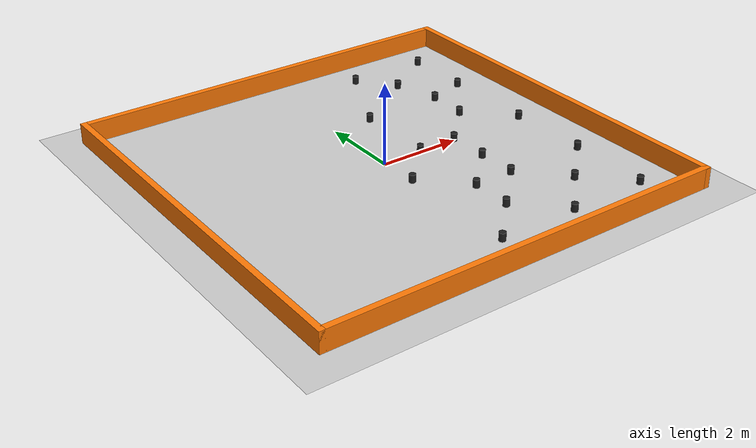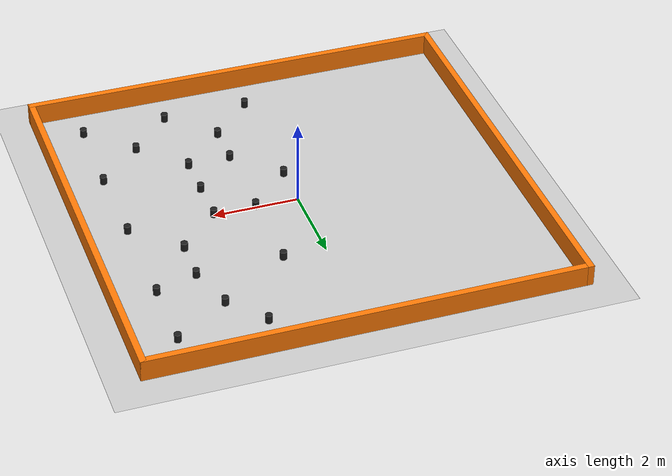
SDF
<sdf version="1.7">
 <world name="default">
  <model name="ground_plane">
   <static>1</static>
   <link name="link">
    <collision name="collision">
     <geometry><plane><normal>0 0 1</normal><size>100 100</size></plane></geometry>
     <surface>
      <contact><collide_bitmask>65535</collide_bitmask></contact>
      <friction><ode><mu>100</mu><mu2>50</mu2></ode></friction>
     </surface>
    </collision>
    <visual name="visual">
     <cast_shadows>0</cast_shadows>
     <geometry><plane><normal>0 0 1</normal><size>100 100</size></plane></geometry>
     <material>
      <script><uri>file://media/materials/scripts/gazebo.material</uri><name>Gazebo/Grey</name></script>
     </material>
    </visual>
   </link>
  </model>
  <model name="walls">
   <pose>-0.00064 -0.002056 0 0 -0 0</pose>
   <link name="Wall_10">
    <collision name="Wall_10_Collision">
     <geometry><box><size>10 0.15 0.5</size></box></geometry>
     <pose>0 0 0.25 0 -0 0</pose>
    </collision>
    <visual name="Wall_10_Visual">
     <pose>0 0 0.25 0 -0 0</pose>
     <geometry><box><size>10 0.15 0.5</size></box></geometry>
     <material>
      <script><uri>file://media/materials/scripts/gazebo.material</uri><name>Gazebo/Grey</name></script>
      <ambient>0.996078 0.47451 0.0196078 1</ambient>
     </material>
     <meta><layer>0</layer></meta>
    </visual>
    <pose>-5 0 0 0 -0 -1.5708</pose>
   </link>
   <link name="Wall_12">
    <collision name="Wall_12_Collision">
     <geometry><box><size>10.15 0.15 0.5</size></box></geometry>
     <pose>0 0 0.25 0 -0 0</pose>
    </collision>
    <visual name="Wall_12_Visual">
     <pose>0 0 0.25 0 -0 0</pose>
     <geometry><box><size>10.15 0.15 0.5</size></box></geometry>
     <material>
      <script><uri>file://media/materials/scripts/gazebo.material</uri><name>Gazebo/Grey</name></script>
      <ambient>0.996078 0.47451 0.0196078 1</ambient>
     </material>
     <meta><layer>0</layer></meta>
    </visual>
    <pose>0 -4.925 0 0 -0 0</pose>
   </link>
   <link name="Wall_14">
    <collision name="Wall_14_Collision">
     <geometry><box><size>10 0.15 0.5</size></box></geometry>
     <pose>0 0 0.25 0 -0 0</pose>
    </collision>
    <visual name="Wall_14_Visual">
     <pose>0 0 0.25 0 -0 0</pose>
     <geometry><box><size>10 0.15 0.5</size></box></geometry>
     <material>
      <script><uri>file://media/materials/scripts/gazebo.material</uri><name>Gazebo/Grey</name></script>
      <ambient>0.996078 0.47451 0.0196078 1</ambient>
     </material>
     <meta><layer>0</layer></meta>
    </visual>
    <pose>5 0 0 0 -0 -1.5708</pose>
   </link>
   <link name="Wall_7">
    <collision name="Wall_7_Collision">
     <geometry><box><size>10 0.15 0.5</size></box></geometry>
     <pose>0 0 0.25 0 -0 0</pose>
    </collision>
    <visual name="Wall_7_Visual">
     <pose>0 0 0.25 0 -0 0</pose>
     <geometry><box><size>10 0.15 0.5</size></box></geometry>
     <material>
      <script><uri>file://media/materials/scripts/gazebo.material</uri><name>Gazebo/Grey</name></script>
      <ambient>0.996078 0.47451 0.0196078 1</ambient>
     </material>
     <meta><layer>0</layer></meta>
    </visual>
    <pose>0.075 4.925 0 0 -0 0</pose>
   </link>
   <static>1</static>
  </model>
  <model name="cylinder">
   <link name="link">
    <inertial>
     <mass>1</mass>
     <inertia><ixx>0.145833</ixx><ixy>0</ixy><ixz>0</ixz><iyy>0.145833</iyy><iyz>0</iyz><izz>0.125</izz></inertia>
    </inertial>
    <visual name="visual">
     <geometry><cylinder><radius>0.08</radius><length>0.2</length></cylinder></geometry>
     <material>
      <script><name>Gazebo/Black</name><uri>file://media/materials/scripts/gazebo.material</uri></script>
      <shader type="vertex"><normal_map>__default__</normal_map></shader>
      <ambient>1 0 0 1</ambient>
      <diffuse>0.7 0.7 0.7 1</diffuse>
      <specular>0.01 0.01 0.01 1</specular>
      <emissive>0 0 0 1</emissive>
     </material>
    </visual>
    <collision name="collision">
     <geometry><cylinder><radius>0.08</radius><length>0.2</length></cylinder></geometry>
     <surface>
      <friction>
       <ode><mu>1</mu><mu2>1</mu2><fdir1>0 0 0</fdir1><slip1>0</slip1><slip2>0</slip2></ode>
       <torsional>
        <coefficient>1</coefficient>
        <patch_radius>0</patch_radius>
        <surface_radius>0</surface_radius>
        <use_patch_radius>1</use_patch_radius>
        <ode><slip>0</slip></ode>
       </torsional>
      </friction>
      <bounce><restitution_coefficient>0</restitution_coefficient><threshold>1e+06</threshold></bounce>
      <contact>
       <collide_without_contact>0</collide_without_contact>
       <collide_without_contact_bitmask>1</collide_without_contact_bitmask>
       <collide_bitmask>1</collide_bitmask>
       <ode>
        <soft_cfm>0</soft_cfm>
        <soft_erp>0.2</soft_erp>
        <kp>1e+13</kp>
        <kd>1</kd>
        <max_vel>0.01</max_vel>
        <min_depth>0</min_depth>
       </ode>
       <bullet>
        <split_impulse>1</split_impulse>
        <split_impulse_penetration_threshold>-0.01</split_impulse_penetration_threshold>
        <soft_cfm>0</soft_cfm>
        <soft_erp>0.2</soft_erp>
        <kp>1e+13</kp>
        <kd>1</kd>
       </bullet>
      </contact>
     </surface>
    </collision>
   </link>
   <static>1</static>
   <pose>1.00259 0.001229 0.1 0 -0 0</pose>
  </model>
  <model name="cylinder_clone">
   <link name="link">
    <inertial>
     <mass>1</mass>
     <inertia><ixx>0.145833</ixx><ixy>0</ixy><ixz>0</ixz><iyy>0.145833</iyy><iyz>0</iyz><izz>0.125</izz></inertia>
    </inertial>
    <visual name="visual">
     <geometry><cylinder><radius>0.08</radius><length>0.2</length></cylinder></geometry>
     <material>
      <script><name>Gazebo/Black</name><uri>file://media/materials/scripts/gazebo.material</uri></script>
      <shader type="vertex"><normal_map>__default__</normal_map></shader>
      <ambient>1 0 0 1</ambient>
      <diffuse>0.7 0.7 0.7 1</diffuse>
      <specular>0.01 0.01 0.01 1</specular>
      <emissive>0 0 0 1</emissive>
     </material>
    </visual>
    <collision name="collision">
     <geometry><cylinder><radius>0.08</radius><length>0.2</length></cylinder></geometry>
     <surface>
      <friction>
       <ode><mu>1</mu><mu2>1</mu2><fdir1>0 0 0</fdir1><slip1>0</slip1><slip2>0</slip2></ode>
       <torsional>
        <coefficient>1</coefficient>
        <patch_radius>0</patch_radius>
        <surface_radius>0</surface_radius>
        <use_patch_radius>1</use_patch_radius>
        <ode><slip>0</slip></ode>
       </torsional>
      </friction>
      <bounce><restitution_coefficient>0</restitution_coefficient><threshold>1e+06</threshold></bounce>
      <contact>
       <collide_without_contact>0</collide_without_contact>
       <collide_without_contact_bitmask>1</collide_without_contact_bitmask>
       <collide_bitmask>1</collide_bitmask>
       <ode>
        <soft_cfm>0</soft_cfm>
        <soft_erp>0.2</soft_erp>
        <kp>1e+13</kp>
        <kd>1</kd>
        <max_vel>0.01</max_vel>
        <min_depth>0</min_depth>
       </ode>
       <bullet>
        <split_impulse>1</split_impulse>
        <split_impulse_penetration_threshold>-0.01</split_impulse_penetration_threshold>
        <soft_cfm>0</soft_cfm>
        <soft_erp>0.2</soft_erp>
        <kp>1e+13</kp>
        <kd>1</kd>
       </bullet>
      </contact>
     </surface>
    </collision>
   </link>
   <static>1</static>
   <pose>1.99384 0.00385 0.1 0 -0 0</pose>
  </model>
  <model name="cylinder_clone_clone">
   <link name="link">
    <inertial>
     <mass>1</mass>
     <inertia><ixx>0.145833</ixx><ixy>0</ixy><ixz>0</ixz><iyy>0.145833</iyy><iyz>0</iyz><izz>0.125</izz></inertia>
    </inertial>
    <visual name="visual">
     <geometry><cylinder><radius>0.08</radius><length>0.2</length></cylinder></geometry>
     <material>
      <script><name>Gazebo/Black</name><uri>file://media/materials/scripts/gazebo.material</uri></script>
      <shader type="vertex"><normal_map>__default__</normal_map></shader>
      <ambient>1 0 0 1</ambient>
      <diffuse>0.7 0.7 0.7 1</diffuse>
      <specular>0.01 0.01 0.01 1</specular>
      <emissive>0 0 0 1</emissive>
     </material>
    </visual>
    <collision name="collision">
     <geometry><cylinder><radius>0.08</radius><length>0.2</length></cylinder></geometry>
     <surface>
      <friction>
       <ode><mu>1</mu><mu2>1</mu2><fdir1>0 0 0</fdir1><slip1>0</slip1><slip2>0</slip2></ode>
       <torsional>
        <coefficient>1</coefficient>
        <patch_radius>0</patch_radius>
        <surface_radius>0</surface_radius>
        <use_patch_radius>1</use_patch_radius>
        <ode><slip>0</slip></ode>
       </torsional>
      </friction>
      <bounce><restitution_coefficient>0</restitution_coefficient><threshold>1e+06</threshold></bounce>
      <contact>
       <collide_without_contact>0</collide_without_contact>
       <collide_without_contact_bitmask>1</collide_without_contact_bitmask>
       <collide_bitmask>1</collide_bitmask>
       <ode>
        <soft_cfm>0</soft_cfm>
        <soft_erp>0.2</soft_erp>
        <kp>1e+13</kp>
        <kd>1</kd>
        <max_vel>0.01</max_vel>
        <min_depth>0</min_depth>
       </ode>
       <bullet>
        <split_impulse>1</split_impulse>
        <split_impulse_penetration_threshold>-0.01</split_impulse_penetration_threshold>
        <soft_cfm>0</soft_cfm>
        <soft_erp>0.2</soft_erp>
        <kp>1e+13</kp>
        <kd>1</kd>
       </bullet>
      </contact>
     </surface>
    </collision>
   </link>
   <static>1</static>
   <pose>1.99822 -1.01574 0.1 0 -0 0</pose>
  </model>
  <model name="cylinder_clone_clone_clone">
   <link name="link">
    <inertial>
     <mass>1</mass>
     <inertia><ixx>0.145833</ixx><ixy>0</ixy><ixz>0</ixz><iyy>0.145833</iyy><iyz>0</iyz><izz>0.125</izz></inertia>
    </inertial>
    <visual name="visual">
     <geometry><cylinder><radius>0.08</radius><length>0.2</length></cylinder></geometry>
     <material>
      <script><name>Gazebo/Black</name><uri>file://media/materials/scripts/gazebo.material</uri></script>
      <shader type="vertex"><normal_map>__default__</normal_map></shader>
      <ambient>1 0 0 1</ambient>
      <diffuse>0.7 0.7 0.7 1</diffuse>
      <specular>0.01 0.01 0.01 1</specular>
      <emissive>0 0 0 1</emissive>
     </material>
    </visual>
    <collision name="collision">
     <geometry><cylinder><radius>0.08</radius><length>0.2</length></cylinder></geometry>
     <surface>
      <friction>
       <ode><mu>1</mu><mu2>1</mu2><fdir1>0 0 0</fdir1><slip1>0</slip1><slip2>0</slip2></ode>
       <torsional>
        <coefficient>1</coefficient>
        <patch_radius>0</patch_radius>
        <surface_radius>0</surface_radius>
        <use_patch_radius>1</use_patch_radius>
        <ode><slip>0</slip></ode>
       </torsional>
      </friction>
      <bounce><restitution_coefficient>0</restitution_coefficient><threshold>1e+06</threshold></bounce>
      <contact>
       <collide_without_contact>0</collide_without_contact>
       <collide_without_contact_bitmask>1</collide_without_contact_bitmask>
       <collide_bitmask>1</collide_bitmask>
       <ode>
        <soft_cfm>0</soft_cfm>
        <soft_erp>0.2</soft_erp>
        <kp>1e+13</kp>
        <kd>1</kd>
        <max_vel>0.01</max_vel>
        <min_depth>0</min_depth>
       </ode>
       <bullet>
        <split_impulse>1</split_impulse>
        <split_impulse_penetration_threshold>-0.01</split_impulse_penetration_threshold>
        <soft_cfm>0</soft_cfm>
        <soft_erp>0.2</soft_erp>
        <kp>1e+13</kp>
        <kd>1</kd>
       </bullet>
      </contact>
     </surface>
    </collision>
   </link>
   <static>1</static>
   <pose>1.99822 -1.99574 0.1 0 -0 0</pose>
  </model>
  <model name="cylinder_clone_clone_clone_clone">
   <link name="link">
    <inertial>
     <mass>1</mass>
     <inertia><ixx>0.145833</ixx><ixy>0</ixy><ixz>0</ixz><iyy>0.145833</iyy><iyz>0</iyz><izz>0.125</izz></inertia>
    </inertial>
    <visual name="visual">
     <geometry><cylinder><radius>0.08</radius><length>0.2</length></cylinder></geometry>
     <material>
      <script><name>Gazebo/Black</name><uri>file://media/materials/scripts/gazebo.material</uri></script>
      <shader type="vertex"><normal_map>__default__</normal_map></shader>
      <ambient>1 0 0 1</ambient>
      <diffuse>0.7 0.7 0.7 1</diffuse>
      <specular>0.01 0.01 0.01 1</specular>
      <emissive>0 0 0 1</emissive>
     </material>
    </visual>
    <collision name="collision">
     <geometry><cylinder><radius>0.08</radius><length>0.2</length></cylinder></geometry>
     <surface>
      <friction>
       <ode><mu>1</mu><mu2>1</mu2><fdir1>0 0 0</fdir1><slip1>0</slip1><slip2>0</slip2></ode>
       <torsional>
        <coefficient>1</coefficient>
        <patch_radius>0</patch_radius>
        <surface_radius>0</surface_radius>
        <use_patch_radius>1</use_patch_radius>
        <ode><slip>0</slip></ode>
       </torsional>
      </friction>
      <bounce><restitution_coefficient>0</restitution_coefficient><threshold>1e+06</threshold></bounce>
      <contact>
       <collide_without_contact>0</collide_without_contact>
       <collide_without_contact_bitmask>1</collide_without_contact_bitmask>
       <collide_bitmask>1</collide_bitmask>
       <ode>
        <soft_cfm>0</soft_cfm>
        <soft_erp>0.2</soft_erp>
        <kp>1e+13</kp>
        <kd>1</kd>
        <max_vel>0.01</max_vel>
        <min_depth>0</min_depth>
       </ode>
       <bullet>
        <split_impulse>1</split_impulse>
        <split_impulse_penetration_threshold>-0.01</split_impulse_penetration_threshold>
        <soft_cfm>0</soft_cfm>
        <soft_erp>0.2</soft_erp>
        <kp>1e+13</kp>
        <kd>1</kd>
       </bullet>
      </contact>
     </surface>
    </collision>
   </link>
   <static>1</static>
   <pose>0.998219 -2.00574 0.1 0 -0 0</pose>
  </model>
  <model name="cylinder_clone_clone_clone_clone_clone">
   <link name="link">
    <inertial>
     <mass>1</mass>
     <inertia><ixx>0.145833</ixx><ixy>0</ixy><ixz>0</ixz><iyy>0.145833</iyy><iyz>0</iyz><izz>0.125</izz></inertia>
    </inertial>
    <visual name="visual">
     <geometry><cylinder><radius>0.08</radius><length>0.2</length></cylinder></geometry>
     <material>
      <script><name>Gazebo/Black</name><uri>file://media/materials/scripts/gazebo.material</uri></script>
      <shader type="vertex"><normal_map>__default__</normal_map></shader>
      <ambient>1 0 0 1</ambient>
      <diffuse>0.7 0.7 0.7 1</diffuse>
      <specular>0.01 0.01 0.01 1</specular>
      <emissive>0 0 0 1</emissive>
     </material>
    </visual>
    <collision name="collision">
     <geometry><cylinder><radius>0.08</radius><length>0.2</length></cylinder></geometry>
     <surface>
      <friction>
       <ode><mu>1</mu><mu2>1</mu2><fdir1>0 0 0</fdir1><slip1>0</slip1><slip2>0</slip2></ode>
       <torsional>
        <coefficient>1</coefficient>
        <patch_radius>0</patch_radius>
        <surface_radius>0</surface_radius>
        <use_patch_radius>1</use_patch_radius>
        <ode><slip>0</slip></ode>
       </torsional>
      </friction>
      <bounce><restitution_coefficient>0</restitution_coefficient><threshold>1e+06</threshold></bounce>
      <contact>
       <collide_without_contact>0</collide_without_contact>
       <collide_without_contact_bitmask>1</collide_without_contact_bitmask>
       <collide_bitmask>1</collide_bitmask>
       <ode>
        <soft_cfm>0</soft_cfm>
        <soft_erp>0.2</soft_erp>
        <kp>1e+13</kp>
        <kd>1</kd>
        <max_vel>0.01</max_vel>
        <min_depth>0</min_depth>
       </ode>
       <bullet>
        <split_impulse>1</split_impulse>
        <split_impulse_penetration_threshold>-0.01</split_impulse_penetration_threshold>
        <soft_cfm>0</soft_cfm>
        <soft_erp>0.2</soft_erp>
        <kp>1e+13</kp>
        <kd>1</kd>
       </bullet>
      </contact>
     </surface>
    </collision>
   </link>
   <static>1</static>
   <pose>0.008219 -1.00574 0.1 0 -0 0</pose>
  </model>
  <model name="cylinder_clone_clone_clone_clone_clone_clone_clone">
   <link name="link">
    <inertial>
     <mass>1</mass>
     <inertia><ixx>0.145833</ixx><ixy>0</ixy><ixz>0</ixz><iyy>0.145833</iyy><iyz>0</iyz><izz>0.125</izz></inertia>
    </inertial>
    <visual name="visual">
     <geometry><cylinder><radius>0.08</radius><length>0.2</length></cylinder></geometry>
     <material>
      <script><name>Gazebo/Black</name><uri>file://media/materials/scripts/gazebo.material</uri></script>
      <shader type="vertex"><normal_map>__default__</normal_map></shader>
      <ambient>1 0 0 1</ambient>
      <diffuse>0.7 0.7 0.7 1</diffuse>
      <specular>0.01 0.01 0.01 1</specular>
      <emissive>0 0 0 1</emissive>
     </material>
    </visual>
    <collision name="collision">
     <geometry><cylinder><radius>0.08</radius><length>0.2</length></cylinder></geometry>
     <surface>
      <friction>
       <ode><mu>1</mu><mu2>1</mu2><fdir1>0 0 0</fdir1><slip1>0</slip1><slip2>0</slip2></ode>
       <torsional>
        <coefficient>1</coefficient>
        <patch_radius>0</patch_radius>
        <surface_radius>0</surface_radius>
        <use_patch_radius>1</use_patch_radius>
        <ode><slip>0</slip></ode>
       </torsional>
      </friction>
      <bounce><restitution_coefficient>0</restitution_coefficient><threshold>1e+06</threshold></bounce>
      <contact>
       <collide_without_contact>0</collide_without_contact>
       <collide_without_contact_bitmask>1</collide_without_contact_bitmask>
       <collide_bitmask>1</collide_bitmask>
       <ode>
        <soft_cfm>0</soft_cfm>
        <soft_erp>0.2</soft_erp>
        <kp>1e+13</kp>
        <kd>1</kd>
        <max_vel>0.01</max_vel>
        <min_depth>0</min_depth>
       </ode>
       <bullet>
        <split_impulse>1</split_impulse>
        <split_impulse_penetration_threshold>-0.01</split_impulse_penetration_threshold>
        <soft_cfm>0</soft_cfm>
        <soft_erp>0.2</soft_erp>
        <kp>1e+13</kp>
        <kd>1</kd>
       </bullet>
      </contact>
     </surface>
    </collision>
   </link>
   <static>1</static>
   <pose>2.99822 2.00426 0.1 0 -0 0</pose>
  </model>
  <model name="cylinder_clone_clone_clone_clone_clone_clone_clone_clone">
   <link name="link">
    <inertial>
     <mass>1</mass>
     <inertia><ixx>0.145833</ixx><ixy>0</ixy><ixz>0</ixz><iyy>0.145833</iyy><iyz>0</iyz><izz>0.125</izz></inertia>
    </inertial>
    <visual name="visual">
     <geometry><cylinder><radius>0.08</radius><length>0.2</length></cylinder></geometry>
     <material>
      <script><name>Gazebo/Black</name><uri>file://media/materials/scripts/gazebo.material</uri></script>
      <shader type="vertex"><normal_map>__default__</normal_map></shader>
      <ambient>1 0 0 1</ambient>
      <diffuse>0.7 0.7 0.7 1</diffuse>
      <specular>0.01 0.01 0.01 1</specular>
      <emissive>0 0 0 1</emissive>
     </material>
    </visual>
    <collision name="collision">
     <geometry><cylinder><radius>0.08</radius><length>0.2</length></cylinder></geometry>
     <surface>
      <friction>
       <ode><mu>1</mu><mu2>1</mu2><fdir1>0 0 0</fdir1><slip1>0</slip1><slip2>0</slip2></ode>
       <torsional>
        <coefficient>1</coefficient>
        <patch_radius>0</patch_radius>
        <surface_radius>0</surface_radius>
        <use_patch_radius>1</use_patch_radius>
        <ode><slip>0</slip></ode>
       </torsional>
      </friction>
      <bounce><restitution_coefficient>0</restitution_coefficient><threshold>1e+06</threshold></bounce>
      <contact>
       <collide_without_contact>0</collide_without_contact>
       <collide_without_contact_bitmask>1</collide_without_contact_bitmask>
       <collide_bitmask>1</collide_bitmask>
       <ode>
        <soft_cfm>0</soft_cfm>
        <soft_erp>0.2</soft_erp>
        <kp>1e+13</kp>
        <kd>1</kd>
        <max_vel>0.01</max_vel>
        <min_depth>0</min_depth>
       </ode>
       <bullet>
        <split_impulse>1</split_impulse>
        <split_impulse_penetration_threshold>-0.01</split_impulse_penetration_threshold>
        <soft_cfm>0</soft_cfm>
        <soft_erp>0.2</soft_erp>
        <kp>1e+13</kp>
        <kd>1</kd>
       </bullet>
      </contact>
     </surface>
    </collision>
   </link>
   <static>1</static>
   <pose>3.99822 -0.005743 0.1 0 -0 0</pose>
  </model>
  <model name="cylinder_clone_clone_clone_clone_clone_clone_clone_clone_clone">
   <link name="link">
    <inertial>
     <mass>1</mass>
     <inertia><ixx>0.145833</ixx><ixy>0</ixy><ixz>0</ixz><iyy>0.145833</iyy><iyz>0</iyz><izz>0.125</izz></inertia>
    </inertial>
    <visual name="visual">
     <geometry><cylinder><radius>0.08</radius><length>0.2</length></cylinder></geometry>
     <material>
      <script><name>Gazebo/Black</name><uri>file://media/materials/scripts/gazebo.material</uri></script>
      <shader type="vertex"><normal_map>__default__</normal_map></shader>
      <ambient>1 0 0 1</ambient>
      <diffuse>0.7 0.7 0.7 1</diffuse>
      <specular>0.01 0.01 0.01 1</specular>
      <emissive>0 0 0 1</emissive>
     </material>
    </visual>
    <collision name="collision">
     <geometry><cylinder><radius>0.08</radius><length>0.2</length></cylinder></geometry>
     <surface>
      <friction>
       <ode><mu>1</mu><mu2>1</mu2><fdir1>0 0 0</fdir1><slip1>0</slip1><slip2>0</slip2></ode>
       <torsional>
        <coefficient>1</coefficient>
        <patch_radius>0</patch_radius>
        <surface_radius>0</surface_radius>
        <use_patch_radius>1</use_patch_radius>
        <ode><slip>0</slip></ode>
       </torsional>
      </friction>
      <bounce><restitution_coefficient>0</restitution_coefficient><threshold>1e+06</threshold></bounce>
      <contact>
       <collide_without_contact>0</collide_without_contact>
       <collide_without_contact_bitmask>1</collide_without_contact_bitmask>
       <collide_bitmask>1</collide_bitmask>
       <ode>
        <soft_cfm>0</soft_cfm>
        <soft_erp>0.2</soft_erp>
        <kp>1e+13</kp>
        <kd>1</kd>
        <max_vel>0.01</max_vel>
        <min_depth>0</min_depth>
       </ode>
       <bullet>
        <split_impulse>1</split_impulse>
        <split_impulse_penetration_threshold>-0.01</split_impulse_penetration_threshold>
        <soft_cfm>0</soft_cfm>
        <soft_erp>0.2</soft_erp>
        <kp>1e+13</kp>
        <kd>1</kd>
       </bullet>
      </contact>
     </surface>
    </collision>
   </link>
   <static>1</static>
   <pose>0.998219 1.99426 0.1 0 -0 0</pose>
  </model>
  <model name="cylinder_clone_clone_clone_clone_clone_clone_clone_clone_0">
   <link name="link">
    <inertial>
     <mass>1</mass>
     <inertia><ixx>0.145833</ixx><ixy>0</ixy><ixz>0</ixz><iyy>0.145833</iyy><iyz>0</iyz><izz>0.125</izz></inertia>
    </inertial>
    <visual name="visual">
     <geometry><cylinder><radius>0.08</radius><length>0.2</length></cylinder></geometry>
     <material>
      <script><name>Gazebo/Black</name><uri>file://media/materials/scripts/gazebo.material</uri></script>
      <shader type="vertex"><normal_map>__default__</normal_map></shader>
      <ambient>1 0 0 1</ambient>
      <diffuse>0.7 0.7 0.7 1</diffuse>
      <specular>0.01 0.01 0.01 1</specular>
      <emissive>0 0 0 1</emissive>
     </material>
    </visual>
    <collision name="collision">
     <geometry><cylinder><radius>0.08</radius><length>0.2</length></cylinder></geometry>
     <surface>
      <friction>
       <ode><mu>1</mu><mu2>1</mu2><fdir1>0 0 0</fdir1><slip1>0</slip1><slip2>0</slip2></ode>
       <torsional>
        <coefficient>1</coefficient>
        <patch_radius>0</patch_radius>
        <surface_radius>0</surface_radius>
        <use_patch_radius>1</use_patch_radius>
        <ode><slip>0</slip></ode>
       </torsional>
      </friction>
      <bounce><restitution_coefficient>0</restitution_coefficient><threshold>1e+06</threshold></bounce>
      <contact>
       <collide_without_contact>0</collide_without_contact>
       <collide_without_contact_bitmask>1</collide_without_contact_bitmask>
       <collide_bitmask>1</collide_bitmask>
       <ode>
        <soft_cfm>0</soft_cfm>
        <soft_erp>0.2</soft_erp>
        <kp>1e+13</kp>
        <kd>1</kd>
        <max_vel>0.01</max_vel>
        <min_depth>0</min_depth>
       </ode>
       <bullet>
        <split_impulse>1</split_impulse>
        <split_impulse_penetration_threshold>-0.01</split_impulse_penetration_threshold>
        <soft_cfm>0</soft_cfm>
        <soft_erp>0.2</soft_erp>
        <kp>1e+13</kp>
        <kd>1</kd>
       </bullet>
      </contact>
     </surface>
    </collision>
   </link>
   <static>1</static>
   <pose>3.98922 3.98975 0.1 0 -0 0</pose>
  </model>
  <model name="cylinder_clone_clone_clone_clone_clone_clone_clone_clone_1">
   <link name="link">
    <inertial>
     <mass>1</mass>
     <inertia><ixx>0.145833</ixx><ixy>0</ixy><ixz>0</ixz><iyy>0.145833</iyy><iyz>0</iyz><izz>0.125</izz></inertia>
    </inertial>
    <visual name="visual">
     <geometry><cylinder><radius>0.08</radius><length>0.2</length></cylinder></geometry>
     <material>
      <script><name>Gazebo/Black</name><uri>file://media/materials/scripts/gazebo.material</uri></script>
      <shader type="vertex"><normal_map>__default__</normal_map></shader>
      <ambient>1 0 0 1</ambient>
      <diffuse>0.7 0.7 0.7 1</diffuse>
      <specular>0.01 0.01 0.01 1</specular>
      <emissive>0 0 0 1</emissive>
     </material>
    </visual>
    <collision name="collision">
     <geometry><cylinder><radius>0.08</radius><length>0.2</length></cylinder></geometry>
     <surface>
      <friction>
       <ode><mu>1</mu><mu2>1</mu2><fdir1>0 0 0</fdir1><slip1>0</slip1><slip2>0</slip2></ode>
       <torsional>
        <coefficient>1</coefficient>
        <patch_radius>0</patch_radius>
        <surface_radius>0</surface_radius>
        <use_patch_radius>1</use_patch_radius>
        <ode><slip>0</slip></ode>
       </torsional>
      </friction>
      <bounce><restitution_coefficient>0</restitution_coefficient><threshold>1e+06</threshold></bounce>
      <contact>
       <collide_without_contact>0</collide_without_contact>
       <collide_without_contact_bitmask>1</collide_without_contact_bitmask>
       <collide_bitmask>1</collide_bitmask>
       <ode>
        <soft_cfm>0</soft_cfm>
        <soft_erp>0.2</soft_erp>
        <kp>1e+13</kp>
        <kd>1</kd>
        <max_vel>0.01</max_vel>
        <min_depth>0</min_depth>
       </ode>
       <bullet>
        <split_impulse>1</split_impulse>
        <split_impulse_penetration_threshold>-0.01</split_impulse_penetration_threshold>
        <soft_cfm>0</soft_cfm>
        <soft_erp>0.2</soft_erp>
        <kp>1e+13</kp>
        <kd>1</kd>
       </bullet>
      </contact>
     </surface>
    </collision>
   </link>
   <static>1</static>
   <pose>3.98922 -4.00834 0.1 0 -0 0</pose>
  </model>
  <model name="cylinder_clone_clone_clone_clone_clone_clone_clone_clone_2">
   <link name="link">
    <inertial>
     <mass>1</mass>
     <inertia><ixx>0.145833</ixx><ixy>0</ixy><ixz>0</ixz><iyy>0.145833</iyy><iyz>0</iyz><izz>0.125</izz></inertia>
    </inertial>
    <visual name="visual">
     <geometry><cylinder><radius>0.08</radius><length>0.2</length></cylinder></geometry>
     <material>
      <script><name>Gazebo/Black</name><uri>file://media/materials/scripts/gazebo.material</uri></script>
      <shader type="vertex"><normal_map>__default__</normal_map></shader>
      <ambient>1 0 0 1</ambient>
      <diffuse>0.7 0.7 0.7 1</diffuse>
      <specular>0.01 0.01 0.01 1</specular>
      <emissive>0 0 0 1</emissive>
     </material>
    </visual>
    <collision name="collision">
     <geometry><cylinder><radius>0.08</radius><length>0.2</length></cylinder></geometry>
     <surface>
      <friction>
       <ode><mu>1</mu><mu2>1</mu2><fdir1>0 0 0</fdir1><slip1>0</slip1><slip2>0</slip2></ode>
       <torsional>
        <coefficient>1</coefficient>
        <patch_radius>0</patch_radius>
        <surface_radius>0</surface_radius>
        <use_patch_radius>1</use_patch_radius>
        <ode><slip>0</slip></ode>
       </torsional>
      </friction>
      <bounce><restitution_coefficient>0</restitution_coefficient><threshold>1e+06</threshold></bounce>
      <contact>
       <collide_without_contact>0</collide_without_contact>
       <collide_without_contact_bitmask>1</collide_without_contact_bitmask>
       <collide_bitmask>1</collide_bitmask>
       <ode>
        <soft_cfm>0</soft_cfm>
        <soft_erp>0.2</soft_erp>
        <kp>1e+13</kp>
        <kd>1</kd>
        <max_vel>0.01</max_vel>
        <min_depth>0</min_depth>
       </ode>
       <bullet>
        <split_impulse>1</split_impulse>
        <split_impulse_penetration_threshold>-0.01</split_impulse_penetration_threshold>
        <soft_cfm>0</soft_cfm>
        <soft_erp>0.2</soft_erp>
        <kp>1e+13</kp>
        <kd>1</kd>
       </bullet>
      </contact>
     </surface>
    </collision>
   </link>
   <static>1</static>
   <pose>0.008321 -4.00834 0.1 0 -0 0</pose>
  </model>
  <model name="cylinder_clone_clone_clone_clone_clone_clone_clone_clone_3">
   <link name="link">
    <inertial>
     <mass>1</mass>
     <inertia><ixx>0.145833</ixx><ixy>0</ixy><ixz>0</ixz><iyy>0.145833</iyy><iyz>0</iyz><izz>0.125</izz></inertia>
    </inertial>
    <visual name="visual">
     <geometry><cylinder><radius>0.08</radius><length>0.2</length></cylinder></geometry>
     <material>
      <script><name>Gazebo/Black</name><uri>file://media/materials/scripts/gazebo.material</uri></script>
      <shader type="vertex"><normal_map>__default__</normal_map></shader>
      <ambient>1 0 0 1</ambient>
      <diffuse>0.7 0.7 0.7 1</diffuse>
      <specular>0.01 0.01 0.01 1</specular>
      <emissive>0 0 0 1</emissive>
     </material>
    </visual>
    <collision name="collision">
     <geometry><cylinder><radius>0.08</radius><length>0.2</length></cylinder></geometry>
     <surface>
      <friction>
       <ode><mu>1</mu><mu2>1</mu2><fdir1>0 0 0</fdir1><slip1>0</slip1><slip2>0</slip2></ode>
       <torsional>
        <coefficient>1</coefficient>
        <patch_radius>0</patch_radius>
        <surface_radius>0</surface_radius>
        <use_patch_radius>1</use_patch_radius>
        <ode><slip>0</slip></ode>
       </torsional>
      </friction>
      <bounce><restitution_coefficient>0</restitution_coefficient><threshold>1e+06</threshold></bounce>
      <contact>
       <collide_without_contact>0</collide_without_contact>
       <collide_without_contact_bitmask>1</collide_without_contact_bitmask>
       <collide_bitmask>1</collide_bitmask>
       <ode>
        <soft_cfm>0</soft_cfm>
        <soft_erp>0.2</soft_erp>
        <kp>1e+13</kp>
        <kd>1</kd>
        <max_vel>0.01</max_vel>
        <min_depth>0</min_depth>
       </ode>
       <bullet>
        <split_impulse>1</split_impulse>
        <split_impulse_penetration_threshold>-0.01</split_impulse_penetration_threshold>
        <soft_cfm>0</soft_cfm>
        <soft_erp>0.2</soft_erp>
        <kp>1e+13</kp>
        <kd>1</kd>
       </bullet>
      </contact>
     </surface>
    </collision>
   </link>
   <static>1</static>
   <pose>2.00482 -4.02044 0.1 0 -0 0</pose>
  </model>
  <model name="cylinder_clone_clone_clone_clone_clone_clone_clone_clone_4">
   <link name="link">
    <inertial>
     <mass>1</mass>
     <inertia><ixx>0.145833</ixx><ixy>0</ixy><ixz>0</ixz><iyy>0.145833</iyy><iyz>0</iyz><izz>0.125</izz></inertia>
    </inertial>
    <visual name="visual">
     <geometry><cylinder><radius>0.08</radius><length>0.2</length></cylinder></geometry>
     <material>
      <script><name>Gazebo/Black</name><uri>file://media/materials/scripts/gazebo.material</uri></script>
      <shader type="vertex"><normal_map>__default__</normal_map></shader>
      <ambient>1 0 0 1</ambient>
      <diffuse>0.7 0.7 0.7 1</diffuse>
      <specular>0.01 0.01 0.01 1</specular>
      <emissive>0 0 0 1</emissive>
     </material>
    </visual>
    <collision name="collision">
     <geometry><cylinder><radius>0.08</radius><length>0.2</length></cylinder></geometry>
     <surface>
      <friction>
       <ode><mu>1</mu><mu2>1</mu2><fdir1>0 0 0</fdir1><slip1>0</slip1><slip2>0</slip2></ode>
       <torsional>
        <coefficient>1</coefficient>
        <patch_radius>0</patch_radius>
        <surface_radius>0</surface_radius>
        <use_patch_radius>1</use_patch_radius>
        <ode><slip>0</slip></ode>
       </torsional>
      </friction>
      <bounce><restitution_coefficient>0</restitution_coefficient><threshold>1e+06</threshold></bounce>
      <contact>
       <collide_without_contact>0</collide_without_contact>
       <collide_without_contact_bitmask>1</collide_without_contact_bitmask>
       <collide_bitmask>1</collide_bitmask>
       <ode>
        <soft_cfm>0</soft_cfm>
        <soft_erp>0.2</soft_erp>
        <kp>1e+13</kp>
        <kd>1</kd>
        <max_vel>0.01</max_vel>
        <min_depth>0</min_depth>
       </ode>
       <bullet>
        <split_impulse>1</split_impulse>
        <split_impulse_penetration_threshold>-0.01</split_impulse_penetration_threshold>
        <soft_cfm>0</soft_cfm>
        <soft_erp>0.2</soft_erp>
        <kp>1e+13</kp>
        <kd>1</kd>
       </bullet>
      </contact>
     </surface>
    </collision>
   </link>
   <static>1</static>
   <pose>0.988421 -3.00404 0.1 0 -0 0</pose>
  </model>
  <model name="cylinder_clone_clone_clone_clone_clone_clone_clone_clone_7">
   <link name="link">
    <inertial>
     <mass>1</mass>
     <inertia><ixx>0.145833</ixx><ixy>0</ixy><ixz>0</ixz><iyy>0.145833</iyy><iyz>0</iyz><izz>0.125</izz></inertia>
    </inertial>
    <visual name="visual">
     <geometry><cylinder><radius>0.08</radius><length>0.2</length></cylinder></geometry>
     <material>
      <script><name>Gazebo/Black</name><uri>file://media/materials/scripts/gazebo.material</uri></script>
      <shader type="vertex"><normal_map>__default__</normal_map></shader>
      <ambient>1 0 0 1</ambient>
      <diffuse>0.7 0.7 0.7 1</diffuse>
      <specular>0.01 0.01 0.01 1</specular>
      <emissive>0 0 0 1</emissive>
     </material>
    </visual>
    <collision name="collision">
     <geometry><cylinder><radius>0.08</radius><length>0.2</length></cylinder></geometry>
     <surface>
      <friction>
       <ode><mu>1</mu><mu2>1</mu2><fdir1>0 0 0</fdir1><slip1>0</slip1><slip2>0</slip2></ode>
       <torsional>
        <coefficient>1</coefficient>
        <patch_radius>0</patch_radius>
        <surface_radius>0</surface_radius>
        <use_patch_radius>1</use_patch_radius>
        <ode><slip>0</slip></ode>
       </torsional>
      </friction>
      <bounce><restitution_coefficient>0</restitution_coefficient><threshold>1e+06</threshold></bounce>
      <contact>
       <collide_without_contact>0</collide_without_contact>
       <collide_without_contact_bitmask>1</collide_without_contact_bitmask>
       <collide_bitmask>1</collide_bitmask>
       <ode>
        <soft_cfm>0</soft_cfm>
        <soft_erp>0.2</soft_erp>
        <kp>1e+13</kp>
        <kd>1</kd>
        <max_vel>0.01</max_vel>
        <min_depth>0</min_depth>
       </ode>
       <bullet>
        <split_impulse>1</split_impulse>
        <split_impulse_penetration_threshold>-0.01</split_impulse_penetration_threshold>
        <soft_cfm>0</soft_cfm>
        <soft_erp>0.2</soft_erp>
        <kp>1e+13</kp>
        <kd>1</kd>
       </bullet>
      </contact>
     </surface>
    </collision>
   </link>
   <static>1</static>
   <pose>1.98062 3.98976 0.1 0 -0 0</pose>
  </model>
  <model name="cylinder_clone_clone_clone_clone_clone_clone_clone_clone_11">
   <link name="link">
    <inertial>
     <mass>1</mass>
     <inertia><ixx>0.145833</ixx><ixy>0</ixy><ixz>0</ixz><iyy>0.145833</iyy><iyz>0</iyz><izz>0.125</izz></inertia>
    </inertial>
    <visual name="visual">
     <geometry><cylinder><radius>0.08</radius><length>0.2</length></cylinder></geometry>
     <material>
      <script><name>Gazebo/Black</name><uri>file://media/materials/scripts/gazebo.material</uri></script>
      <shader type="vertex"><normal_map>__default__</normal_map></shader>
      <ambient>1 0 0 1</ambient>
      <diffuse>0.7 0.7 0.7 1</diffuse>
      <specular>0.01 0.01 0.01 1</specular>
      <emissive>0 0 0 1</emissive>
     </material>
    </visual>
    <collision name="collision">
     <geometry><cylinder><radius>0.08</radius><length>0.2</length></cylinder></geometry>
     <surface>
      <friction>
       <ode><mu>1</mu><mu2>1</mu2><fdir1>0 0 0</fdir1><slip1>0</slip1><slip2>0</slip2></ode>
       <torsional>
        <coefficient>1</coefficient>
        <patch_radius>0</patch_radius>
        <surface_radius>0</surface_radius>
        <use_patch_radius>1</use_patch_radius>
        <ode><slip>0</slip></ode>
       </torsional>
      </friction>
      <bounce><restitution_coefficient>0</restitution_coefficient><threshold>1e+06</threshold></bounce>
      <contact>
       <collide_without_contact>0</collide_without_contact>
       <collide_without_contact_bitmask>1</collide_without_contact_bitmask>
       <collide_bitmask>1</collide_bitmask>
       <ode>
        <soft_cfm>0</soft_cfm>
        <soft_erp>0.2</soft_erp>
        <kp>1e+13</kp>
        <kd>1</kd>
        <max_vel>0.01</max_vel>
        <min_depth>0</min_depth>
       </ode>
       <bullet>
        <split_impulse>1</split_impulse>
        <split_impulse_penetration_threshold>-0.01</split_impulse_penetration_threshold>
        <soft_cfm>0</soft_cfm>
        <soft_erp>0.2</soft_erp>
        <kp>1e+13</kp>
        <kd>1</kd>
       </bullet>
      </contact>
     </surface>
    </collision>
   </link>
   <static>1</static>
   <pose>2.97282 1.00106 0.1 0 -0 0</pose>
  </model>
  <model name="cylinder_clone_clone_clone_clone_clone_clone_clone_clone_12">
   <link name="link">
    <inertial>
     <mass>1</mass>
     <inertia><ixx>0.145833</ixx><ixy>0</ixy><ixz>0</ixz><iyy>0.145833</iyy><iyz>0</iyz><izz>0.125</izz></inertia>
    </inertial>
    <visual name="visual">
     <geometry><cylinder><radius>0.08</radius><length>0.2</length></cylinder></geometry>
     <material>
      <script><name>Gazebo/Black</name><uri>file://media/materials/scripts/gazebo.material</uri></script>
      <shader type="vertex"><normal_map>__default__</normal_map></shader>
      <ambient>1 0 0 1</ambient>
      <diffuse>0.7 0.7 0.7 1</diffuse>
      <specular>0.01 0.01 0.01 1</specular>
      <emissive>0 0 0 1</emissive>
     </material>
    </visual>
    <collision name="collision">
     <geometry><cylinder><radius>0.08</radius><length>0.2</length></cylinder></geometry>
     <surface>
      <friction>
       <ode><mu>1</mu><mu2>1</mu2><fdir1>0 0 0</fdir1><slip1>0</slip1><slip2>0</slip2></ode>
       <torsional>
        <coefficient>1</coefficient>
        <patch_radius>0</patch_radius>
        <surface_radius>0</surface_radius>
        <use_patch_radius>1</use_patch_radius>
        <ode><slip>0</slip></ode>
       </torsional>
      </friction>
      <bounce><restitution_coefficient>0</restitution_coefficient><threshold>1e+06</threshold></bounce>
      <contact>
       <collide_without_contact>0</collide_without_contact>
       <collide_without_contact_bitmask>1</collide_without_contact_bitmask>
       <collide_bitmask>1</collide_bitmask>
       <ode>
        <soft_cfm>0</soft_cfm>
        <soft_erp>0.2</soft_erp>
        <kp>1e+13</kp>
        <kd>1</kd>
        <max_vel>0.01</max_vel>
        <min_depth>0</min_depth>
       </ode>
       <bullet>
        <split_impulse>1</split_impulse>
        <split_impulse_penetration_threshold>-0.01</split_impulse_penetration_threshold>
        <soft_cfm>0</soft_cfm>
        <soft_erp>0.2</soft_erp>
        <kp>1e+13</kp>
        <kd>1</kd>
       </bullet>
      </contact>
     </surface>
    </collision>
   </link>
   <static>1</static>
   <pose>4.02552 -2.01185 0.1 0 -0 0</pose>
  </model>
  <model name="cylinder_clone_clone_clone_clone_clone_clone_clone_clone_15">
   <link name="link">
    <inertial>
     <mass>1</mass>
     <inertia><ixx>0.145833</ixx><ixy>0</ixy><ixz>0</ixz><iyy>0.145833</iyy><iyz>0</iyz><izz>0.125</izz></inertia>
    </inertial>
    <visual name="visual">
     <geometry><cylinder><radius>0.08</radius><length>0.2</length></cylinder></geometry>
     <material>
      <script><name>Gazebo/Black</name><uri>file://media/materials/scripts/gazebo.material</uri></script>
      <shader type="vertex"><normal_map>__default__</normal_map></shader>
      <ambient>1 0 0 1</ambient>
      <diffuse>0.7 0.7 0.7 1</diffuse>
      <specular>0.01 0.01 0.01 1</specular>
      <emissive>0 0 0 1</emissive>
     </material>
    </visual>
    <collision name="collision">
     <geometry><cylinder><radius>0.08</radius><length>0.2</length></cylinder></geometry>
     <surface>
      <friction>
       <ode><mu>1</mu><mu2>1</mu2><fdir1>0 0 0</fdir1><slip1>0</slip1><slip2>0</slip2></ode>
       <torsional>
        <coefficient>1</coefficient>
        <patch_radius>0</patch_radius>
        <surface_radius>0</surface_radius>
        <use_patch_radius>1</use_patch_radius>
        <ode><slip>0</slip></ode>
       </torsional>
      </friction>
      <bounce><restitution_coefficient>0</restitution_coefficient><threshold>1e+06</threshold></bounce>
      <contact>
       <collide_without_contact>0</collide_without_contact>
       <collide_without_contact_bitmask>1</collide_without_contact_bitmask>
       <collide_bitmask>1</collide_bitmask>
       <ode>
        <soft_cfm>0</soft_cfm>
        <soft_erp>0.2</soft_erp>
        <kp>1e+13</kp>
        <kd>1</kd>
        <max_vel>0.01</max_vel>
        <min_depth>0</min_depth>
       </ode>
       <bullet>
        <split_impulse>1</split_impulse>
        <split_impulse_penetration_threshold>-0.01</split_impulse_penetration_threshold>
        <soft_cfm>0</soft_cfm>
        <soft_erp>0.2</soft_erp>
        <kp>1e+13</kp>
        <kd>1</kd>
       </bullet>
      </contact>
     </surface>
    </collision>
   </link>
   <static>1</static>
   <pose>2.68239 3.12565 0.1 0 -0 0</pose>
  </model>
  <model name="cylinder_clone_clone_clone_clone_clone_clone_clone_clone_16">
   <link name="link">
    <inertial>
     <mass>1</mass>
     <inertia><ixx>0.145833</ixx><ixy>0</ixy><ixz>0</ixz><iyy>0.145833</iyy><iyz>0</iyz><izz>0.125</izz></inertia>
    </inertial>
    <visual name="visual">
     <geometry><cylinder><radius>0.08</radius><length>0.2</length></cylinder></geometry>
     <material>
      <script><name>Gazebo/Black</name><uri>file://media/materials/scripts/gazebo.material</uri></script>
      <shader type="vertex"><normal_map>__default__</normal_map></shader>
      <ambient>1 0 0 1</ambient>
      <diffuse>0.7 0.7 0.7 1</diffuse>
      <specular>0.01 0.01 0.01 1</specular>
      <emissive>0 0 0 1</emissive>
     </material>
    </visual>
    <collision name="collision">
     <geometry><cylinder><radius>0.08</radius><length>0.2</length></cylinder></geometry>
     <surface>
      <friction>
       <ode><mu>1</mu><mu2>1</mu2><fdir1>0 0 0</fdir1><slip1>0</slip1><slip2>0</slip2></ode>
       <torsional>
        <coefficient>1</coefficient>
        <patch_radius>0</patch_radius>
        <surface_radius>0</surface_radius>
        <use_patch_radius>1</use_patch_radius>
        <ode><slip>0</slip></ode>
       </torsional>
      </friction>
      <bounce><restitution_coefficient>0</restitution_coefficient><threshold>1e+06</threshold></bounce>
      <contact>
       <collide_without_contact>0</collide_without_contact>
       <collide_without_contact_bitmask>1</collide_without_contact_bitmask>
       <collide_bitmask>1</collide_bitmask>
       <ode>
        <soft_cfm>0</soft_cfm>
        <soft_erp>0.2</soft_erp>
        <kp>1e+13</kp>
        <kd>1</kd>
        <max_vel>0.01</max_vel>
        <min_depth>0</min_depth>
       </ode>
       <bullet>
        <split_impulse>1</split_impulse>
        <split_impulse_penetration_threshold>-0.01</split_impulse_penetration_threshold>
        <soft_cfm>0</soft_cfm>
        <soft_erp>0.2</soft_erp>
        <kp>1e+13</kp>
        <kd>1</kd>
       </bullet>
      </contact>
     </surface>
    </collision>
   </link>
   <static>1</static>
   <pose>3.97916 2.31533 0.1 0 -0 0</pose>
  </model>
  <model name="cylinder_clone_clone_clone_clone_clone_clone_clone_clone_17">
   <link name="link">
    <inertial>
     <mass>1</mass>
     <inertia><ixx>0.145833</ixx><ixy>0</ixy><ixz>0</ixz><iyy>0.145833</iyy><iyz>0</iyz><izz>0.125</izz></inertia>
    </inertial>
    <visual name="visual">
     <geometry><cylinder><radius>0.08</radius><length>0.2</length></cylinder></geometry>
     <material>
      <script><name>Gazebo/Black</name><uri>file://media/materials/scripts/gazebo.material</uri></script>
      <shader type="vertex"><normal_map>__default__</normal_map></shader>
      <ambient>1 0 0 1</ambient>
      <diffuse>0.7 0.7 0.7 1</diffuse>
      <specular>0.01 0.01 0.01 1</specular>
      <emissive>0 0 0 1</emissive>
     </material>
    </visual>
    <collision name="collision">
     <geometry><cylinder><radius>0.08</radius><length>0.2</length></cylinder></geometry>
     <surface>
      <friction>
       <ode><mu>1</mu><mu2>1</mu2><fdir1>0 0 0</fdir1><slip1>0</slip1><slip2>0</slip2></ode>
       <torsional>
        <coefficient>1</coefficient>
        <patch_radius>0</patch_radius>
        <surface_radius>0</surface_radius>
        <use_patch_radius>1</use_patch_radius>
        <ode><slip>0</slip></ode>
       </torsional>
      </friction>
      <bounce><restitution_coefficient>0</restitution_coefficient><threshold>1e+06</threshold></bounce>
      <contact>
       <collide_without_contact>0</collide_without_contact>
       <collide_without_contact_bitmask>1</collide_without_contact_bitmask>
       <collide_bitmask>1</collide_bitmask>
       <ode>
        <soft_cfm>0</soft_cfm>
        <soft_erp>0.2</soft_erp>
        <kp>1e+13</kp>
        <kd>1</kd>
        <max_vel>0.01</max_vel>
        <min_depth>0</min_depth>
       </ode>
       <bullet>
        <split_impulse>1</split_impulse>
        <split_impulse_penetration_threshold>-0.01</split_impulse_penetration_threshold>
        <soft_cfm>0</soft_cfm>
        <soft_erp>0.2</soft_erp>
        <kp>1e+13</kp>
        <kd>1</kd>
       </bullet>
      </contact>
     </surface>
    </collision>
   </link>
   <static>1</static>
   <pose>2.98112 -3.0037 0.1 0 -0 0</pose>
  </model>
 </world>
</sdf>
